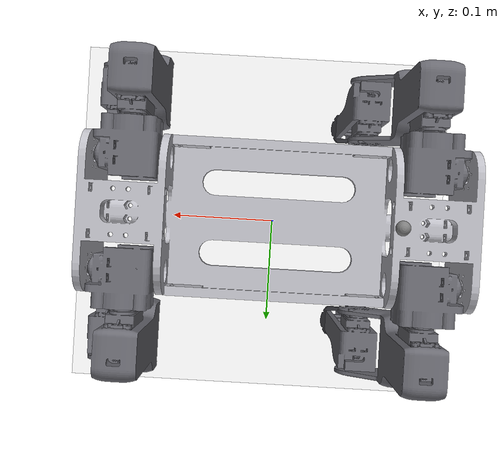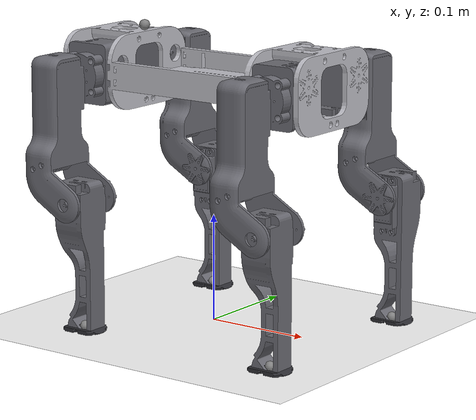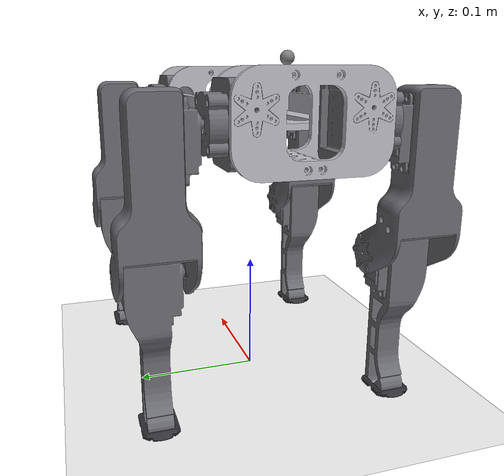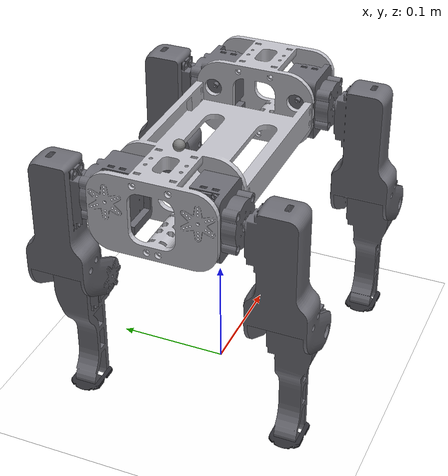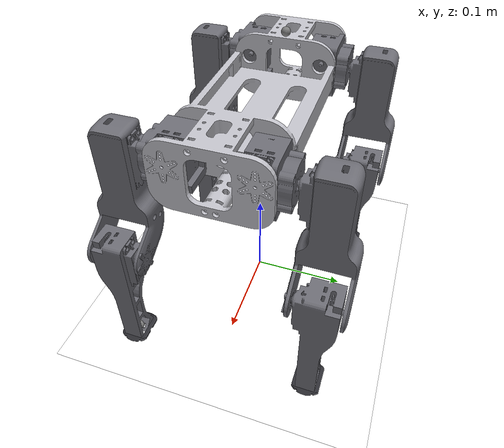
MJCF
<mujoco model="scene">
    <include file="dog.xml"/>

    <visual>
        <headlight diffuse="0.6 0.6 0.6" ambient="0.3 0.3 0.3" specular="0 0 0"/>
        <rgba haze="0.15 0.25 0.35 1"/>
        <global azimuth="160" elevation="-20"/>
    </visual>

    <asset>
        <texture type="skybox" builtin="gradient" rgb1="1 1 1" rgb2="1 1 1" width="800" height="800"/>
        <texture type="2d" name="groundplane" builtin="checker" mark="edge" rgb1="1 1 1" rgb2="1 1 1" markrgb="0 0 0"
            width="300" height="300"/>
        <material name="groundplane" texture="groundplane" texuniform="true" texrepeat="5 5" reflectance="0"/>
    </asset>

    <worldbody>
        <body name="floor">
            <geom name="floor" size="0 0 0.01" type="plane" material="groundplane" contype="1" conaffinity="0"
                priority="1" friction="0.6" condim="3"/>
        </body>
    </worldbody>
    <keyframe>
        <key name="home"
            qpos="
    0 0 0.30
    1 0 0 0
      0.0
      0.67
      -1.3
      0.0
      0.67
      -1.3
      0.0
      0.67
      -1.3
      0.0
      0.67
      -1.3
"
            ctrl="
      0.0
      0.67
      -1.3
      0.0
      0.67
      -1.3
      0.0
      0.67
      -1.3
      0.0
      0.67
      -1.3
          "/>
    </keyframe>
</mujoco>

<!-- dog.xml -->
<mujoco model="dog_m">
  <compiler angle="radian" meshdir="assets"/>

  <option iterations="1" ls_iterations="5">
    <flag eulerdamp="disable"/>
  </option>

  <default>
    <default class="dog">
      <joint frictionloss="0.1" armature="0.005"/>
      <position kp="50" dampratio="1"/>
      <default class="visual">
        <geom type="mesh" contype="0" conaffinity="0" group="2"/>
      </default>
      <default class="collision">
        <geom group="3"/>
      </default>
    </default>
  </default>

  <default>
    <default class="sts3215">
      <geom contype="0" conaffinity="0"/>
      <joint damping="0.56" frictionloss="0.068" armature="0.027"/>
      <position kp="13.37" kv="0.0" forcerange="-3.23 3.23"/>
    </default>
  </default>

  <worldbody>
    <body name="base" pos="0 0 0.22">
      <freejoint name="floating_base"/>
      <site name="imu" pos="-0.08 -0.0 0.05"/>

      <body name="trunk" childclass="dog">
        <inertial pos="-0.0000265 0 0.0055159" mass="1.1320046"
          fullinertia="0.0014531 0.0060976 0.0071152 -0.0000092 -0.0000001 0"/>
        <geom class="visual" mesh="trunk" material="trunk_material"/>
        <geom class="collision" type="box" pos="0 0 0.01" size="0.1325 0.05475 0.035"/>

        <body name="FR_hip" pos="0.1305 -0.03923 0.019">
          <joint name="FR_hip_joint" axis="1 0 0" range="-0.802851455917 0.802851455917" class="sts3215"/>
          <inertial pos="-0.0267598 -0.0023151 -0.0094611" mass="0.0843956"
            fullinertia="0.0000207 0.0000234 0.0000146 -0.0000004 0.0000002 0.0000001"/>
          <geom class="visual" mesh="FR_hip" material="leg_material"/>
          <geom class="collision" type="box" pos="-0.026 -0.006 -0.01" size="0.02175 0.021 0.02825"/>

          <body name="FR_thigh" pos="-0.02585 -0.024 -0.01">
            <joint name="FR_thigh_joint" axis="0 1 0" range="-1.0471975512 4.18879020479" class="sts3215"/>
            <inertial pos="0.001738 -0.0320053 -0.0336023" mass="0.1351927"
              fullinertia="0.0002128 0.0001953 0.0000461 -0.0000023 -0.0000185 0.0000224"/>
            <geom class="visual" mesh="FR_thigh" material="leg_material"/>
            <geom class="collision" type="box" pos="0.03 -0.034 -0.033" size="0.01 0.0065 0.05568"/>

            <body name="FR_calf" pos="0.03 -0.0081 -0.10725">
              <joint name="FR_calf_joint" axis="0 1 0" range="-2.6965336943 -0.916297857297" class="sts3215"/>
              <inertial pos="0.0004209 -0.0271693 -0.0219402" mass="0.0993956"
                fullinertia="0.0001117 0.0001086 0.000013 0.0000001 -0.0000033 -0.0000012"/>
              <geom class="visual" mesh="FR_calf" material="leg_material"/>
              <geom class="collision" type="box" pos="0 -0.026 -0.046" size="0.0045 0.0045 0.06"/>

              <body name="FR_foot" pos="-0.00009305 -0.0261 -0.1184">
                <inertial pos="-0.0065101 0 -0.0064928" mass="0.006"
                  fullinertia="0.0000008 0.0000008 0.0000008 0 -0.0000002 0"/>
                <geom class="visual" mesh="FR_foot" material="foot_material"/>
                <geom class="collision" type="sphere" size="0.02" name="FR_foot_bottom_tpu"/>
                <site name="FR_foot"/>
              </body>
            </body>
          </body>
        </body>

        <body name="FL_hip" pos="0.1305 0.03877 0.019">
          <joint name="FL_hip_joint" axis="1 0 0" range="-0.802851455917 0.802851455917" class="sts3215"/>
          <inertial pos="-0.0267598 0.0023151 -0.0095722" mass="0.0843956"
            fullinertia="0.0000207 0.0000235 0.0000146 0.0000004 0.0000002 -0.0000001"/>
          <geom class="visual" mesh="FL_hip" material="leg_material"/>
          <geom class="collision" type="box" pos="-0.026 0.006 -0.01" size="0.02175 0.021 0.02825"/>

          <body name="FL_thigh" pos="-0.02585 0.024 -0.010445">
            <joint name="FL_thigh_joint" axis="0 1 0" range="-1.0471975512 4.18879020479" class="sts3215"/>
            <inertial pos="0.001738 0.0320052 -0.0336023" mass="0.1351927"
              fullinertia="0.0002128 0.0001953 0.0000461 0.0000023 -0.0000185 -0.0000224"/>
            <geom class="visual" mesh="FL_thigh" material="leg_material"/>
            <geom class="collision" type="box" pos="0.03 0.034 -0.033" size="0.01 0.0065 0.05568"/>

            <body name="FL_calf" pos="0.03 0.0081 -0.107">
              <joint name="FL_calf_joint" axis="0 1 0" range="-2.6965336943 -0.916297857297" class="sts3215"/>
              <inertial pos="0.0004209 0.0271693 -0.022031" mass="0.0993956"
                fullinertia="0.0001121 0.000109 0.000013 -0.0000001 -0.0000033 0.0000011"/>
              <geom class="visual" mesh="FL_calf" material="leg_material"/>
              <geom class="collision" type="box" pos="0 0.026 -0.046" size="0.0045 0.0045 0.06"/>

              <body name="FL_foot" pos="-0.00009305 0.0261 -0.11865">
                <inertial pos="-0.0065101 0 -0.0064928" mass="0.006"
                  fullinertia="0.0000008 0.0000008 0.0000008 0 -0.0000002 0"/>
                <geom class="visual" mesh="FL_foot" material="foot_material"/>
                <geom class="collision" type="sphere" size="0.02" name="FL_foot_bottom_tpu"/>
                <site name="FL_foot"/>
              </body>
            </body>
          </body>
        </body>

        <body name="RR_hip" pos="-0.1305 -0.03877 0.019">
          <joint name="RR_hip_joint" axis="1 0 0" range="-0.802851455917 0.802851455917" class="sts3215"/>
          <inertial pos="0.0267597 -0.0023151 -0.0094611" mass="0.0843956"
            fullinertia="0.0000207 0.0000234 0.0000146 0.0000004 0.0000002 0.0000001"/>
          <geom class="visual" mesh="RR_hip" material="leg_material"/>
          <geom class="collision" type="box" pos="0.026 -0.006 -0.01" size="0.02175 0.021 0.02825"/>

          <body name="RR_thigh" pos="0.02585 -0.024 -0.01">
            <joint name="RR_thigh_joint" axis="0 1 0" range="-1.0471975512 4.18879020479" class="sts3215"/>
            <inertial pos="0.001738 -0.0320053 -0.0336023" mass="0.1351927"
              fullinertia="0.0002128 0.0001953 0.0000461 -0.0000023 -0.0000185 0.0000224"/>
            <geom class="visual" mesh="RR_thigh" material="leg_material"/>
            <geom class="collision" type="box" pos="0.03 -0.034 -0.033" size="0.01 0.0065 0.05568"/>

            <body name="RR_calf" pos="0.03 -0.0081 -0.10725">
              <joint name="RR_calf_joint" axis="0 1 0" range="-2.6965336943 -0.916297857297" class="sts3215"/>
              <inertial pos="0.0004209 -0.0271693 -0.0219402" mass="0.0993956"
                fullinertia="0.0001117 0.0001086 0.000013 0.0000001 -0.0000033 -0.0000012"/>
              <geom class="visual" mesh="RR_calf" material="leg_material"/>
              <geom class="collision" type="box" pos="0 -0.026 -0.046" size="0.0045 0.0045 0.06"/>

              <body name="RR_foot" pos="-0.00009305 -0.0261 -0.1184">
                <inertial pos="-0.0065101 0 -0.0064928" mass="0.006"
                  fullinertia="0.0000008 0.0000008 0.0000008 0 -0.0000002 0"/>
                <geom class="visual" mesh="RR_foot" material="foot_material"/>
                <geom class="collision" type="sphere" size="0.02" name="RR_foot_bottom_tpu"/>
                <site name="RR_foot"/>
              </body>
            </body>
          </body>
        </body>

        <body name="RL_hip" pos="-0.1305 0.03923 0.019">
          <joint name="RL_hip_joint" axis="1 0 0" range="-0.802851455917 0.802851455917" class="sts3215"/>
          <inertial pos="0.0267597 0.0023151 -0.0094611" mass="0.0843956"
            fullinertia="0.0000207 0.0000234 0.0000146 -0.0000004 0.0000002 -0.0000001"/>
          <geom class="visual" mesh="RL_hip" material="leg_material"/>
          <geom class="collision" type="box" pos="0.026 0.006 -0.01" size="0.02175 0.021 0.02825"/>

          <body name="RL_thigh" pos="0.02585 0.024 -0.01">
            <joint name="RL_thigh_joint" axis="0 1 0" range="-1.0471975512 4.18879020479" class="sts3215"/>
            <inertial pos="0.001738 0.0320052 -0.0336023" mass="0.1351927"
              fullinertia="0.0002128 0.0001953 0.0000461 0.0000023 -0.0000185 -0.0000224"/>
            <geom class="visual" mesh="RL_thigh" material="leg_material"/>
            <geom class="collision" type="box" pos="0.03 0.034 -0.033" size="0.01 0.0065 0.05568"/>

            <body name="RL_calf" pos="0.03 0.0081 -0.107">
              <joint name="RL_calf_joint" axis="0 1 0" range="-2.6965336943 -0.916297857297" class="sts3215"/>
              <inertial pos="0.0004209 0.027169 -0.022031" mass="0.0993956"
                fullinertia="0.0001121 0.000109 0.000013 -0.0000001 -0.0000033 0.0000011"/>
              <geom class="visual" mesh="RL_calf" material="leg_material"/>
              <geom class="collision" type="box" pos="0 0.026 -0.046" size="0.0045 0.0045 0.06"/>

              <body name="RL_foot" pos="-0.00009305 0.0261 -0.11865">
                <inertial pos="-0.0065101 0 -0.0064928" mass="0.006"
                  fullinertia="0.0000008 0.0000008 0.0000008 0 -0.0000002 0"/>
                <geom class="visual" mesh="RL_foot" material="foot_material"/>
                <geom class="collision" type="sphere" size="0.02" name="RL_foot_bottom_tpu"/>
                <site name="RL_foot"/>
              </body>
            </body>
          </body>
        </body>
      </body>
    </body>
  </worldbody>

  <sensor>
    <gyro site="imu" name="gyro"/>
    <velocimeter site="imu" name="local_linvel"/>
    <accelerometer site="imu" name="accelerometer"/>
    <framezaxis objtype="site" objname="imu" name="upvector"/>
    <framexaxis objtype="site" objname="imu" name="forwardvector"/>
    <framelinvel objtype="site" objname="imu" name="global_linvel"/>
    <frameangvel objtype="site" objname="imu" name="global_angvel"/>
    <framepos objtype="site" objname="imu" name="position"/>
    <framequat objtype="site" objname="imu" name="orientation"/>
    <framelinvel objtype="site" objname="FR_foot" name="FR_foot_global_linvel"/>
    <framelinvel objtype="site" objname="FL_foot" name="FL_foot_global_linvel"/>
    <framelinvel objtype="site" objname="RR_foot" name="RR_foot_global_linvel"/>
    <framelinvel objtype="site" objname="RL_foot" name="RL_foot_global_linvel"/>
    <framexaxis objtype="site" objname="FL_foot" name="FL_foot_upvector"/>
    <framexaxis objtype="site" objname="FR_foot" name="FR_foot_upvector"/>
    <framexaxis objtype="site" objname="RR_foot" name="RR_foot_upvector"/>
    <framexaxis objtype="site" objname="RL_foot" name="RL_foot_upvector"/>
    <framepos objtype="site" objname="FL_foot" name="FL_foot_pos"/>
    <framepos objtype="site" objname="FR_foot" name="FR_foot_pos"/>
    <framepos objtype="site" objname="RR_foot" name="RR_foot_pos"/>
    <framepos objtype="site" objname="RL_foot" name="RL_foot_pos"/>
  </sensor>

  <asset>
    <mesh name="trunk" file="trunk.STL"/>
    <mesh name="FR_hip" file="FR_hip.STL"/>
    <mesh name="FR_thigh" file="FR_thigh.STL"/>
    <mesh name="FR_calf" file="FR_calf.STL"/>
    <mesh name="FR_foot" file="FR_foot.STL"/>
    <mesh name="FL_hip" file="FL_hip.STL"/>
    <mesh name="FL_thigh" file="FL_thigh.STL"/>
    <mesh name="FL_calf" file="FL_calf.STL"/>
    <mesh name="FL_foot" file="FL_foot.STL"/>
    <mesh name="RR_hip" file="RR_hip.STL"/>
    <mesh name="RR_thigh" file="RR_thigh.STL"/>
    <mesh name="RR_calf" file="RR_calf.STL"/>
    <mesh name="RR_foot" file="RR_foot.STL"/>
    <mesh name="RL_hip" file="RL_hip.STL"/>
    <mesh name="RL_thigh" file="RL_thigh.STL"/>
    <mesh name="RL_calf" file="RL_calf.STL"/>
    <mesh name="RL_foot" file="RL_foot.STL"/>

    <material name="trunk_material" rgba="0.75 0.75 0.78 1"/>
    <material name="leg_material" rgba="0.42 0.42 0.45 1"/>
    <material name="foot_material" rgba="0.18 0.18 0.2 1"/>
  </asset>

  <actuator>
    <position class="sts3215" joint="FR_hip_joint" name="FR_hip_joint" inheritrange="1"/>
    <position class="sts3215" joint="FR_thigh_joint" name="FR_thigh_joint" inheritrange="1"/>
    <position class="sts3215" joint="FR_calf_joint" name="FR_calf_joint" inheritrange="1"/>
    <position class="sts3215" joint="FL_hip_joint" name="FL_hip_joint" inheritrange="1"/>
    <position class="sts3215" joint="FL_thigh_joint" name="FL_thigh_joint" inheritrange="1"/>
    <position class="sts3215" joint="FL_calf_joint" name="FL_calf_joint" inheritrange="1"/>
    <position class="sts3215" joint="RR_hip_joint" name="RR_hip_joint" inheritrange="1"/>
    <position class="sts3215" joint="RR_thigh_joint" name="RR_thigh_joint" inheritrange="1"/>
    <position class="sts3215" joint="RR_calf_joint" name="RR_calf_joint" inheritrange="1"/>
    <position class="sts3215" joint="RL_hip_joint" name="RL_hip_joint" inheritrange="1"/>
    <position class="sts3215" joint="RL_thigh_joint" name="RL_thigh_joint" inheritrange="1"/>
    <position class="sts3215" joint="RL_calf_joint" name="RL_calf_joint" inheritrange="1"/>
  </actuator>

  <equality/>
</mujoco>
